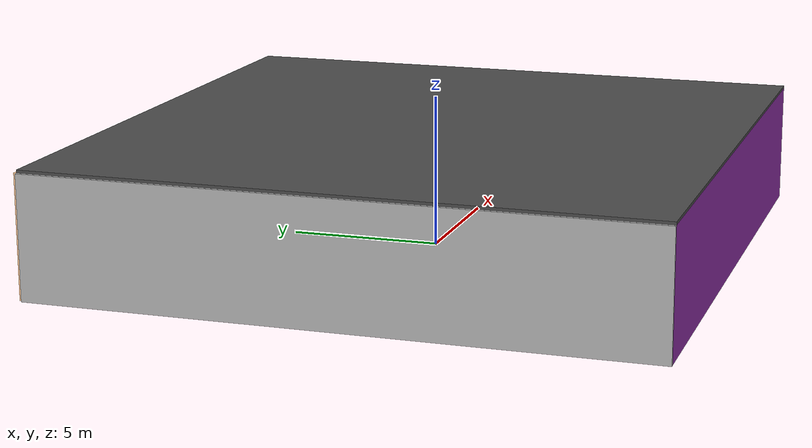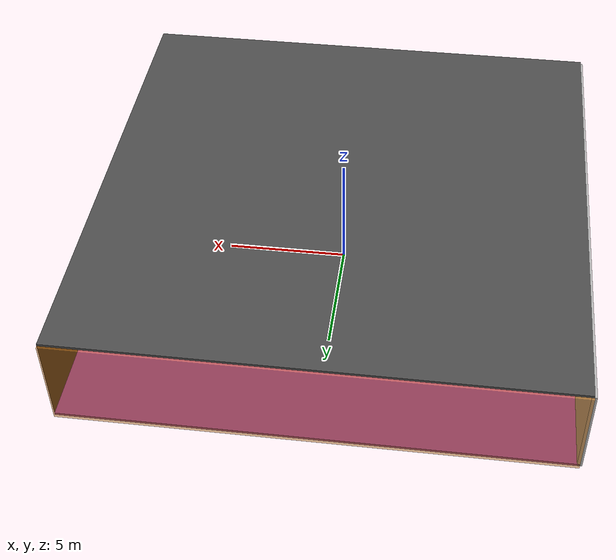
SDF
<sdf version="1.4">
 <world name="default">
  <physics type="ode">
   <max_step_size>0.001</max_step_size>
   <real_time_factor>1</real_time_factor>
   <real_time_update_rate>1000</real_time_update_rate>
   <gravity>0 0 -9.8</gravity>
  </physics>
  <scene><ambient>0.4 0.4 0.4 1</ambient><background>0.7 0.7 0.7 1</background><shadows>1</shadows></scene>
  <model name="Surrounding">
   <static>1</static>
   <link name="Ceiling">
    <collision name="Ceiling_Collision"><geometry><box><size>20 20 0.1</size></box></geometry></collision>
    <visual name="Ceiling_Visual">
     <geometry><box><size>20 20 0.1</size></box></geometry>
     <material>
      <script><uri>file://media/materials/scripts/gazebo.material</uri><name>Gazebo/Road</name></script>
     </material>
    </visual>
    <pose>0 0 4.05 0 0 0</pose>
   </link>
   <link name="Wall_South">
    <collision name="Wall_South_Collision">
     <geometry><box><size>20 0 4</size></box></geometry>
     <pose>0 0 2 0 -0 0</pose>
    </collision>
    <visual name="Wall_South_Visual">
     <pose>0 0 2 0 -0 0</pose>
     <geometry><box><size>20 0 4</size></box></geometry>
     <material>
      <script><uri>file://media/materials/scripts/gazebo.material</uri><name>Gazebo/PurpleGlow</name></script>
     </material>
    </visual>
    <velocity_decay><linear>0</linear><angular>0</angular></velocity_decay>
    <pose>0 -10 0 0 -0 0</pose>
   </link>
   <link name="Wall_East">
    <collision name="Wall_21_Collision">
     <geometry><box><size>20 0 4</size></box></geometry>
     <pose>0 0 2 0 -0 0</pose>
    </collision>
    <visual name="Wall_21_Visual">
     <pose>0 0 2 0 -0 0</pose>
     <geometry><box><size>20 0 4</size></box></geometry>
     <material>
      <script><uri>file://media/materials/scripts/gazebo.material</uri><name>Gazebo/Black</name></script>
     </material>
    </visual>
    <velocity_decay><linear>0</linear><angular>0</angular></velocity_decay>
    <pose>10 0 0 0 -0 1.5708</pose>
   </link>
   <link name="Wall_North">
    <collision name="Wall_22_Collision">
     <geometry><box><size>20 0.2 4</size></box></geometry>
     <pose>0 0 2 0 -0 0</pose>
    </collision>
    <visual name="Wall_22_Visual">
     <pose>0 0 2 0 -0 0</pose>
     <geometry><box><size>20 0.2 4</size></box></geometry>
     <material>
      <script>
       <uri>file://media/materials/scripts/gazebo.material</uri>
       <name>Gazebo/OrangeTransparent</name>
      </script>
     </material>
    </visual>
    <velocity_decay><linear>0</linear><angular>0</angular></velocity_decay>
    <pose>0 10 0 0 -0 0</pose>
   </link>
   <link name="Wall_West">
    <collision name="Wall_23_Collision">
     <geometry><box><size>20 0.2 4</size></box></geometry>
     <pose>0 0 2 0 -0 0</pose>
    </collision>
    <visual name="Wall_23_Visual">
     <pose>0 0 2 0 -0 0</pose>
     <geometry><box><size>20 0.2 4</size></box></geometry>
     <material>
      <script><uri>file://media/materials/scripts/gazebo.material</uri><name>Gazebo/CloudySky</name></script>
     </material>
    </visual>
    <velocity_decay><linear>0</linear><angular>0</angular></velocity_decay>
    <pose>-10 0 0 0 0 -1.5708</pose>
   </link>
   <link name="Ground_link">
    <collision name="collision">
     <pose>0 0 .05 0 -0 0</pose>
     <geometry><box><size>20 20 0.1</size></box></geometry>
    </collision>
    <visual name="visual">
     <pose>0 0 .05 0 -0 0</pose>
     <geometry><box><size>20 20 0.1</size></box></geometry>
     <material>
      <script><uri>file://media/materials/scripts/gazebo.material</uri><name>Gazebo/PurpleGlow</name></script>
     </material>
    </visual>
   </link>
   <static>1</static>
  </model>
  <spherical_coordinates>
   <surface_model>EARTH_WGS84</surface_model>
   <latitude_deg>0</latitude_deg>
   <longitude_deg>0</longitude_deg>
   <elevation>0</elevation>
   <heading_deg>0</heading_deg>
  </spherical_coordinates>
  <light name="lightball_0" type="diffuse">
   <diffuse>0.8 0.8 0.8 1</diffuse>
   <specular>0.2 0.2 0.2 1</specular>
   <attenuation>
    <range>100</range>
    <constant>0.7</constant>
    <linear>0.01</linear>
    <quadratic>0.001</quadratic>
   </attenuation>
   <direction>-0.5 0.1 -0.9</direction>
   <pose>-7.14058973262 -0.945957573001 2.87932813174 0 0 0</pose>
  </light>
  <light name="lightball_1" type="diffuse">
   <diffuse>0.8 0.8 0.8 1</diffuse>
   <specular>0.2 0.2 0.2 1</specular>
   <attenuation>
    <range>100</range>
    <constant>0.7</constant>
    <linear>0.01</linear>
    <quadratic>0.001</quadratic>
   </attenuation>
   <direction>-0.5 0.1 -0.9</direction>
   <pose>-6.44179922349 5.0892023031 3.3663068615 0 0 0</pose>
  </light>
  <light name="lightball_2" type="diffuse">
   <diffuse>0.8 0.8 0.8 1</diffuse>
   <specular>0.2 0.2 0.2 1</specular>
   <attenuation>
    <range>100</range>
    <constant>0.7</constant>
    <linear>0.01</linear>
    <quadratic>0.001</quadratic>
   </attenuation>
   <direction>-0.5 0.1 -0.9</direction>
   <pose>7.58331411649 -4.36103150958 0.80827635431 0 0 0</pose>
  </light>
  <light name="lightball_3" type="diffuse">
   <diffuse>0.8 0.8 0.8 1</diffuse>
   <specular>0.2 0.2 0.2 1</specular>
   <attenuation>
    <range>100</range>
    <constant>0.7</constant>
    <linear>0.01</linear>
    <quadratic>0.001</quadratic>
   </attenuation>
   <direction>-0.5 0.1 -0.9</direction>
   <pose>-0.647788916769 -7.72400257548 3.38867301745 0 0 0</pose>
  </light>
  <light name="lightball_4" type="diffuse">
   <diffuse>0.8 0.8 0.8 1</diffuse>
   <specular>0.2 0.2 0.2 1</specular>
   <attenuation>
    <range>100</range>
    <constant>0.7</constant>
    <linear>0.01</linear>
    <quadratic>0.001</quadratic>
   </attenuation>
   <direction>-0.5 0.1 -0.9</direction>
   <pose>-8.70205808984 6.54059610205 3.69381397314 0 0 0</pose>
  </light>
  <light name="lightball_5" type="diffuse">
   <diffuse>0.8 0.8 0.8 1</diffuse>
   <specular>0.2 0.2 0.2 1</specular>
   <attenuation>
    <range>100</range>
    <constant>0.7</constant>
    <linear>0.01</linear>
    <quadratic>0.001</quadratic>
   </attenuation>
   <direction>-0.5 0.1 -0.9</direction>
   <pose>3.77324512175 2.56497668684 3.25407344162 0 0 0</pose>
  </light>
  <light name="lightball_6" type="diffuse">
   <diffuse>0.8 0.8 0.8 1</diffuse>
   <specular>0.2 0.2 0.2 1</specular>
   <attenuation>
    <range>100</range>
    <constant>0.7</constant>
    <linear>0.01</linear>
    <quadratic>0.001</quadratic>
   </attenuation>
   <direction>-0.5 0.1 -0.9</direction>
   <pose>7.64347223209 7.49073559214 2.53015564086 0 0 0</pose>
  </light>
  <light name="lightball_7" type="diffuse">
   <diffuse>0.8 0.8 0.8 1</diffuse>
   <specular>0.2 0.2 0.2 1</specular>
   <attenuation>
    <range>100</range>
    <constant>0.7</constant>
    <linear>0.01</linear>
    <quadratic>0.001</quadratic>
   </attenuation>
   <direction>-0.5 0.1 -0.9</direction>
   <pose>-1.87576559304 3.80876078931 2.5744375682 0 0 0</pose>
  </light>
  <light name="lightball_8" type="diffuse">
   <diffuse>0.8 0.8 0.8 1</diffuse>
   <specular>0.2 0.2 0.2 1</specular>
   <attenuation>
    <range>100</range>
    <constant>0.7</constant>
    <linear>0.01</linear>
    <quadratic>0.001</quadratic>
   </attenuation>
   <direction>-0.5 0.1 -0.9</direction>
   <pose>3.43922422753 2.03936416436 1.14014456068 0 0 0</pose>
  </light>
  <light name="lightball_9" type="diffuse">
   <diffuse>0.8 0.8 0.8 1</diffuse>
   <specular>0.2 0.2 0.2 1</specular>
   <attenuation>
    <range>100</range>
    <constant>0.7</constant>
    <linear>0.01</linear>
    <quadratic>0.001</quadratic>
   </attenuation>
   <direction>-0.5 0.1 -0.9</direction>
   <pose>-9.21933979569 -6.20044303315 2.90137306349 0 0 0</pose>
  </light>
  <light name="lightball_10" type="diffuse">
   <diffuse>0.8 0.8 0.8 1</diffuse>
   <specular>0.2 0.2 0.2 1</specular>
   <attenuation>
    <range>100</range>
    <constant>0.7</constant>
    <linear>0.01</linear>
    <quadratic>0.001</quadratic>
   </attenuation>
   <direction>-0.5 0.1 -0.9</direction>
   <pose>-1.36792379762 0.591782865505 2.78791826322 0 0 0</pose>
  </light>
  <light name="lightball_11" type="diffuse">
   <diffuse>0.8 0.8 0.8 1</diffuse>
   <specular>0.2 0.2 0.2 1</specular>
   <attenuation>
    <range>100</range>
    <constant>0.7</constant>
    <linear>0.01</linear>
    <quadratic>0.001</quadratic>
   </attenuation>
   <direction>-0.5 0.1 -0.9</direction>
   <pose>5.21157482847 4.25390227408 2.11974230304 0 0 0</pose>
  </light>
  <include>
   <uri>model://construction_cone</uri>
   <pose>-8.1263405987 -2.11063544134 0 0 0 0.500470504715</pose>
  </include>
  <include>
   <uri>model://robocup_3Dsim_goal</uri>
   <pose>-4.75959801643 0.852255589235 0 0 0 1.82143375168</pose>
  </include>
  <include><uri>model://cabinet</uri><pose>-1.69953882758 1.38669456856 0 0 0 0.75999479966</pose></include>
  <include><uri>model://cabinet</uri><pose>2.14183904772 -7.02745258168 0 0 0 0.466233172595</pose></include>
  <include><uri>model://cabinet</uri><pose>1.47659083199 3.81888636443 0 0 0 0.55178678501</pose></include>
 </world>
</sdf>

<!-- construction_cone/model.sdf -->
<sdf version="1.5">
  <model name="Construction Cone">
    <link name="link">
      <collision name="collision">
        <geometry>
          <mesh>
            <scale>10 10 10</scale>
            <uri>file://isr-testbed/construction_cone/meshes/construction_cone.dae</uri>
          </mesh>
        </geometry>
      </collision>
      <visual name="visual">
        <geometry>
          <mesh>
            <scale>10 10 10</scale>
            <uri>file://isr-testbed/construction_cone/meshes/construction_cone.dae</uri>
          </mesh>
        </geometry>
      </visual>
    </link>
  </model>
</sdf>

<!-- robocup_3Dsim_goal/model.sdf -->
<sdf version="1.5">
  <model name="robocup_3d_goal">
    <static>true</static>
    <link name="left_post">
      <pose>0 1.05 0.45 0 0 0</pose>
      <collision name="collision">
        <geometry>
          <cylinder>
            <radius>0.05</radius>
            <length>0.9</length>
          </cylinder>
        </geometry>
      </collision>
      <visual name="visual">
        <geometry>
          <cylinder>
            <radius>0.05</radius>
            <length>0.9</length>
          </cylinder>
        </geometry>
        <material>
          <script>
            <uri>file://media/materials/scripts/gazebo.material</uri>
            <name>Gazebo/ZincYellow</name>
          </script>
        </material>
      </visual>
    </link>
    <link name="left_support_horiz_lower">
      <pose>0.30 1.05 0.01 0 0 0</pose>
      <collision name="collision">
        <geometry>
          <box>
            <size>0.50 0.02 0.02</size>
          </box>
        </geometry>
      </collision>
      <visual name="visual">
        <geometry>
          <box>
            <size>0.50 0.02 0.02</size>
          </box>
        </geometry>
        <material>
          <script>
            <uri>file://media/materials/scripts/gazebo.material</uri>
            <name>Gazebo/White</name>
          </script>
        </material>
      </visual>
    </link>
    <link name="left_support_horiz_upper">
      <pose>0.30 1.05 0.79 0 0 0</pose>
      <collision name="collision">
        <geometry>
          <box>
            <size>0.50 0.02 0.02</size>
          </box>
        </geometry>
      </collision>
      <visual name="visual">
        <geometry>
          <box>
            <size>0.50 0.02 0.02</size>
          </box>
        </geometry>
        <material>
          <script>
            <uri>file://media/materials/scripts/gazebo.material</uri>
            <name>Gazebo/White</name>
          </script>
        </material>
      </visual>
    </link>
    <link name="left_support_vertical">
      <pose>0.56 1.05 0.4 0 1.5708 0</pose>
      <collision name="collision">
        <geometry>
          <box>
            <size>0.80 0.02 0.02</size>
          </box>
        </geometry>
      </collision>
      <visual name="visual">
        <geometry>
          <box>
            <size>0.80 0.02 0.02</size>
          </box>
        </geometry>
        <material>
          <script>
            <uri>file://media/materials/scripts/gazebo.material</uri>
            <name>Gazebo/White</name>
          </script>
        </material>
      </visual>
    </link>
    <link name="right_support_horiz_lower">
      <pose>0.30 -1.05 0.01 0 0 0</pose>
      <collision name="collision">
        <geometry>
          <box>
            <size>0.50 0.02 0.02</size>
          </box>
        </geometry>
      </collision>
      <visual name="visual">
        <geometry>
          <box>
            <size>0.50 0.02 0.02</size>
          </box>
        </geometry>
        <material>
          <script>
            <uri>file://media/materials/scripts/gazebo.material</uri>
            <name>Gazebo/White</name>
          </script>
        </material>
      </visual>
    </link>
    <link name="right_support_horiz_upper">
      <pose>0.30 -1.05 0.79 0 0 0</pose>
      <collision name="collision">
        <geometry>
          <box>
            <size>0.50 0.02 0.02</size>
          </box>
        </geometry>
      </collision>
      <visual name="visual">
        <geometry>
          <box>
            <size>0.50 0.02 0.02</size>
          </box>
        </geometry>
        <material>
          <script>
            <uri>file://media/materials/scripts/gazebo.material</uri>
            <name>Gazebo/White</name>
          </script>
        </material>
      </visual>
    </link>
    <link name="right_support_vertical">
      <pose>0.56 -1.05 0.4 0 1.5708 0</pose>
      <collision name="collision">
        <geometry>
          <box>
            <size>0.80 0.02 0.02</size>
          </box>
        </geometry>
      </collision>
      <visual name="visual">
        <geometry>
          <box>
            <size>0.80 0.02 0.02</size>
          </box>
        </geometry>
        <material>
          <script>
            <uri>file://media/materials/scripts/gazebo.material</uri>
            <name>Gazebo/White</name>
          </script>
        </material>
      </visual>
    </link>
    <link name="center_support_horiz_lower">
      <pose>0.56 0 0.01 0 1.5708 0</pose>
      <collision name="collision">
        <geometry>
          <box>
            <size>0.02 2.08 0.02</size>
          </box>
        </geometry>
      </collision>
      <visual name="visual">
        <geometry>
          <box>
            <size>0.02 2.08 0.02</size>
          </box>
        </geometry>
        <material>
          <script>
            <uri>file://media/materials/scripts/gazebo.material</uri>
            <name>Gazebo/White</name>
          </script>
        </material>
      </visual>
    </link>
    <link name="center_support_horiz_upper">
      <pose>0.56 0 0.79 0 1.5708 0</pose>
      <collision name="collision">
        <geometry>
          <box>
            <size>0.02 2.08 0.02</size>
          </box>
        </geometry>
      </collision>
      <visual name="visual">
        <geometry>
          <box>
            <size>0.02 2.08 0.02</size>
          </box>
        </geometry>
        <material>
          <script>
            <uri>file://media/materials/scripts/gazebo.material</uri>
            <name>Gazebo/White</name>
          </script>
        </material>
      </visual>
    </link>
    <link name="right_post">
      <pose>0 -1.05 0.45 0 0 0</pose>
      <collision name="collision">
        <geometry>
          <cylinder>
            <radius>0.05</radius>
            <length>0.9</length>
          </cylinder>
        </geometry>
      </collision>
      <visual name="visual">
        <geometry>
          <cylinder>
            <radius>0.05</radius>
            <length>0.9</length>
          </cylinder>
        </geometry>
        <material>
          <script>
            <uri>file://media/materials/scripts/gazebo.material</uri>
            <name>Gazebo/ZincYellow</name>
          </script>
        </material>
      </visual>
    </link>
    <link name="crossbar">
      <pose>0 0 0.85 1.57 1.57 0</pose>
      <collision name="collision">
        <geometry>
          <cylinder>
            <radius>0.05</radius>
            <length>2.0</length>
          </cylinder>
        </geometry>
      </collision>
      <visual name="visual">
        <geometry>
          <cylinder>
            <radius>0.05</radius>
            <length>2.0</length>
          </cylinder>
        </geometry>
        <material>
          <script>
            <uri>file://media/materials/scripts/gazebo.material</uri>
            <name>Gazebo/ZincYellow</name>
          </script>
        </material>
      </visual>
    </link>
    <link name="center_net">
      <pose>0.56 0 0.40 0 0 0</pose>
      <collision name="collision">
        <geometry>
          <box>
            <size>0.01 2.1 0.80</size>
          </box>
        </geometry>
      </collision>
      <visual name="visual">
        <geometry>
          <box>
            <size>0.01 2.1 0.80</size>
          </box>
        </geometry>
        <material>
          <script>
            <uri>model://../model_source/models/robocup09_spl_field/materials/scripts/</uri>
            <uri>model://../model_source/models/robocup09_spl_field/materials/textures/</uri>
            <name>RoboCup/Net</name>
          </script>
        </material>
      </visual>
    </link>
    <link name="left_net">
      <pose>0.30 1.05 0.40 0 0 0</pose>
      <collision name="collision">
        <geometry>
          <box>
            <size>0.50 0.01 0.76</size>
          </box>
        </geometry>
      </collision>
      <visual name="visual">
        <geometry>
          <box>
            <size>0.50 0.01 0.76</size>
          </box>
        </geometry>
        <material>
          <script>
            <uri>model://../model_source/models/robocup09_spl_field/materials/scripts/</uri>
            <uri>model://../model_source/models/robocup09_spl_field/materials/textures/</uri>
            <name>RoboCup/Net</name>
          </script>
        </material>
      </visual>
    </link>
    <link name="right_net">
      <pose>0.30 -1.05 0.40 0 0 0</pose>
      <collision name="collision">
        <geometry>
          <box>
            <size>0.50 0.01 0.76</size>
          </box>
        </geometry>
      </collision>
      <visual name="visual">
        <geometry>
          <box>
            <size>0.50 0.01 0.76</size>
          </box>
        </geometry>
        <material>
          <script>
            <uri>model://../model_source/models/robocup09_spl_field/materials/scripts/</uri>
            <uri>model://../model_source/models/robocup09_spl_field/materials/textures/</uri>
            <name>RoboCup/Net</name>
          </script>
        </material>
      </visual>
    </link>
  </model>
</sdf>

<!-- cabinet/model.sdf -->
<sdf version="1.5">
  <model name="cabinet">
    <static>true</static>
    <link name="cabinet_bottom_plate">
      <inertial>
        <pose>0 0 -1 0 0 0</pose>
        <inertia>
          <ixx>2.050000</ixx>
          <ixy>0</ixy>
          <ixz>0</ixz>
          <iyy>2.050000</iyy>
          <iyz>0</iyz>
          <izz>2.050000</izz>
        </inertia>
        <mass>25.000000</mass>
      </inertial>
      <collision name="cabinet_bottom_plate_geom">
        <pose>0 0 0.010000 0 0 0</pose>
        <geometry>
          <box>
            <size>0.450000 0.450000 0.020000</size>
          </box>
        </geometry>
      </collision>
      <visual name="cabinet_bottom_plate_geom_visual">
        <pose>0 0 0.010000 0 0 0</pose>
        <geometry>
          <box>
            <size>0.450000 0.450000 0.020000</size>
          </box>
        </geometry>
        <material>
          <script>
            <uri>model://media/materials/scripts/gazebo.material</uri>
            <name>Gazebo/Wood</name>
          </script>
        </material>
      </visual>
      <collision name="cabinet_bottom_plate_geom_cabinet_back_plate">
        <pose>0.235000 0 0.510000 0 0 0</pose>
        <geometry>
          <box>
            <size>0.020000 0.450000 1.020000</size>
          </box>
        </geometry>
      </collision>
      <visual name="cabinet_bottom_plate_geom_cabinet_back_plate_visual">
        <pose>0.235000 0 0.510000 0 0 0</pose>
        <geometry>
          <box>
            <size>0.020000 0.450000 1.020000</size>
          </box>
        </geometry>
        <material>
          <script>
            <uri>model://media/materials/scripts/gazebo.material</uri>
            <name>Gazebo/Wood</name>
          </script>
        </material>
      </visual>
      <collision name="cabinet_bottom_plate_geom_cabinet_left_plate">
        <pose>0 0.235000 0.510000 0 0 0</pose>
        <geometry>
          <box>
            <size>0.450000 0.020000 1.020000</size>
          </box>
        </geometry>
      </collision>
      <visual name="cabinet_bottom_plate_geom_cabinet_left_plate_visual">
        <pose>0 0.235000 0.510000 0 0 0</pose>
        <geometry>
          <box>
            <size>0.450000 0.020000 1.020000</size>
          </box>
        </geometry>
        <material>
          <script>
            <uri>model://media/materials/scripts/gazebo.material</uri>
            <name>Gazebo/Wood</name>
          </script>
        </material>
      </visual>
      <collision name="cabinet_bottom_plate_geom_cabinet_middle_plate">
        <pose>0 0 0.510000 0 0 0</pose>
        <geometry>
          <box>
            <size>0.450000 0.450000 0.020000</size>
          </box>
        </geometry>
      </collision>
      <visual name="cabinet_bottom_plate_geom_cabinet_middle_plate_visual">
        <pose>0 0 0.510000 0 0 0</pose>
        <geometry>
          <box>
            <size>0.450000 0.450000 0.020000</size>
          </box>
        </geometry>
        <material>
          <script>
            <uri>model://media/materials/scripts/gazebo.material</uri>
            <name>Gazebo/Wood</name>
          </script>
        </material>
      </visual>
      <collision name="cabinet_bottom_plate_geom_cabinet_right_plate">
        <pose>0 -0.235000 0.510000 0 0 0</pose>
        <geometry>
          <box>
            <size>0.450000 0.020000 1.020000</size>
          </box>
        </geometry>
      </collision>
      <visual name="cabinet_bottom_plate_geom_cabinet_right_plate_visual">
        <pose>0 -0.235000 0.510000 0 0 0</pose>
        <geometry>
          <box>
            <size>0.450000 0.020000 1.020000</size>
          </box>
        </geometry>
        <material>
          <script>
            <uri>model://media/materials/scripts/gazebo.material</uri>
            <name>Gazebo/Wood</name>
          </script>
        </material>
      </visual>
      <collision name="cabinet_bottom_plate_geom_cabinet_top_plate">
        <pose>0 0 1.010000 0 0 0</pose>
        <geometry>
          <box>
            <size>0.450000 0.450000 0.020000</size>
          </box>
        </geometry>
      </collision>
      <visual name="cabinet_bottom_plate_geom_cabinet_top_plate_visual">
        <pose>0 0 1.010000 0 0 0</pose>
        <geometry>
          <box>
            <size>0.450000 0.450000 0.020000</size>
          </box>
        </geometry>
        <material>
          <script>
            <uri>model://media/materials/scripts/gazebo.material</uri>
            <name>Gazebo/Wood</name>
          </script>
        </material>
      </visual>
    </link>
  </model>
</sdf>
